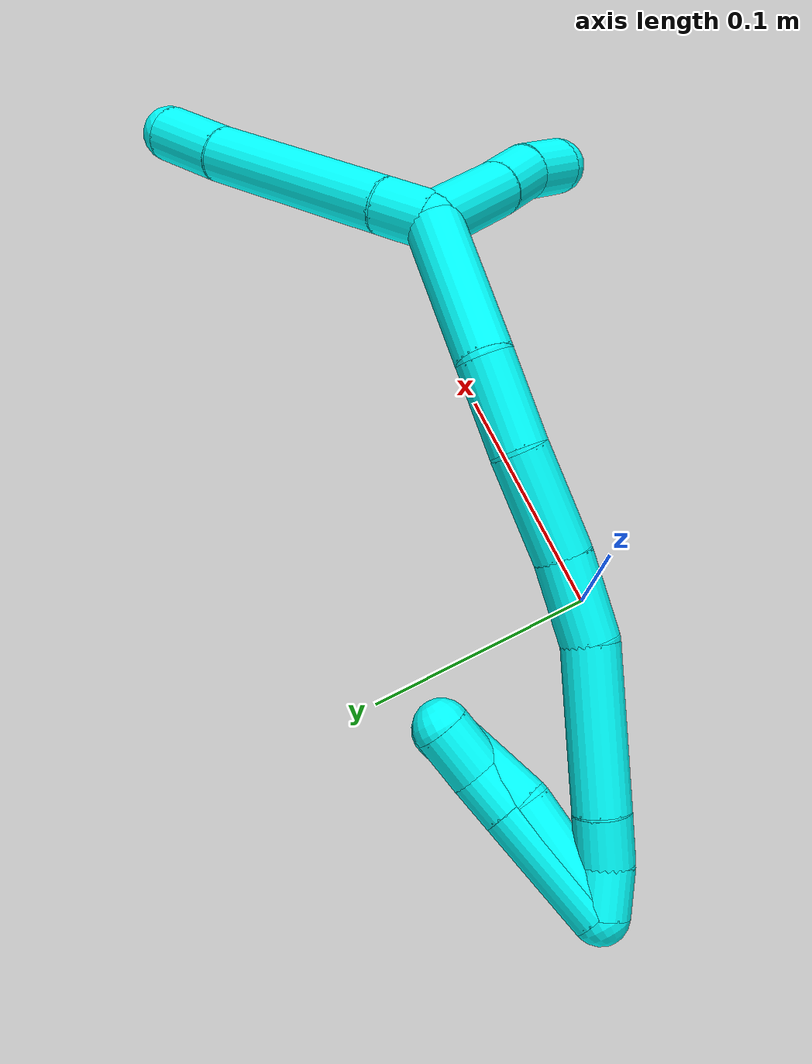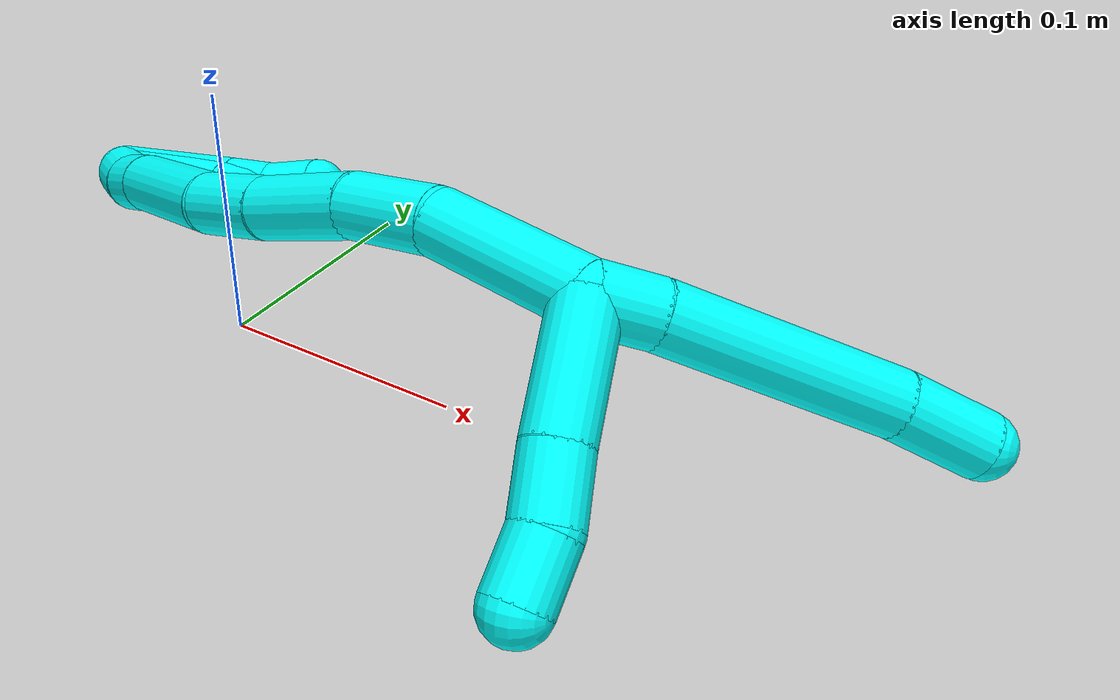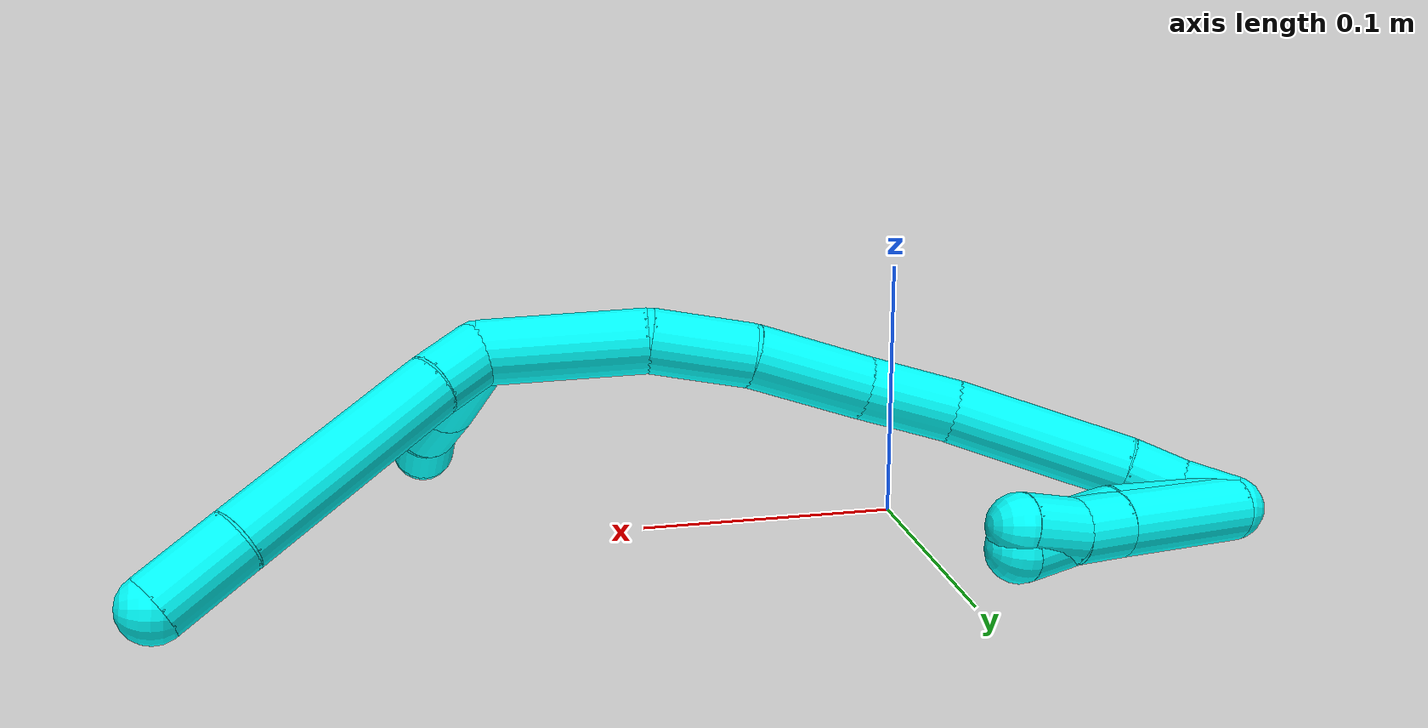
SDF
<sdf version="1.7">
 <world name="default">
  <model name="3">
   <static>0</static>
   <link name="3">
    <collision name="collision-cylinder-e_1_2_8">
     <pose>-0.006039 0.00526 0.009079 -0.525087 -0.522267 0.143391</pose>
     <geometry><cylinder><radius>0.0125</radius><length>0.024212</length></cylinder></geometry>
     <surface>
      <friction><ode><mu>1.16</mu><mu2>1.16</mu2><slip1>0</slip1><slip2>0</slip2></ode></friction>
      <contact><ode><kp>1e+06</kp><kd>1</kd><max_vel>0</max_vel><min_depth>0.001</min_depth></ode></contact>
     </surface>
    </collision>
    <visual name="visual-cylinder-e_1_2_8">
     <pose>-0.006039 0.00526 0.009079 -0.525087 -0.522267 0.143391</pose>
     <geometry><cylinder><radius>0.0125</radius><length>0.024212</length></cylinder></geometry>
     <material><ambient>0.003922 1 0.996078 1</ambient></material>
    </visual>
    <collision name="collision-cylinder-e_2_8_9">
     <pose>-0.032366 0.033656 0.051547 -0.605956 -0.463181 0.14717</pose>
     <geometry><cylinder><radius>0.0125</radius><length>0.090813</length></cylinder></geometry>
     <surface>
      <friction><ode><mu>1.16</mu><mu2>1.16</mu2><slip1>0</slip1><slip2>0</slip2></ode></friction>
      <contact><ode><kp>1e+06</kp><kd>1</kd><max_vel>0</max_vel><min_depth>0.001</min_depth></ode></contact>
     </surface>
    </collision>
    <visual name="visual-cylinder-e_2_8_9">
     <pose>-0.032366 0.033656 0.051547 -0.605956 -0.463181 0.14717</pose>
     <geometry><cylinder><radius>0.0125</radius><length>0.090813</length></cylinder></geometry>
     <material><ambient>0.003922 1 0.996078 1</ambient></material>
    </visual>
    <collision name="collision-cylinder-e_3_9_6">
     <pose>-0.058968 0.066537 0.098013 -0.64046 -0.369433 0.123775</pose>
     <geometry><cylinder><radius>0.0125</radius><length>0.034975</length></cylinder></geometry>
     <surface>
      <friction><ode><mu>1.16</mu><mu2>1.16</mu2><slip1>0</slip1><slip2>0</slip2></ode></friction>
      <contact><ode><kp>1e+06</kp><kd>1</kd><max_vel>0</max_vel><min_depth>0.001</min_depth></ode></contact>
     </surface>
    </collision>
    <visual name="visual-cylinder-e_3_9_6">
     <pose>-0.058968 0.066537 0.098013 -0.64046 -0.369433 0.123775</pose>
     <geometry><cylinder><radius>0.0125</radius><length>0.034975</length></cylinder></geometry>
     <material><ambient>0.003922 1 0.996078 1</ambient></material>
    </visual>
    <collision name="collision-cylinder-e_1_2_10">
     <pose>0.019605 0.014816 0.003056 -1.36737 0.913595 -0.761764</pose>
     <geometry><cylinder><radius>0.0125</radius><length>0.049526</length></cylinder></geometry>
     <surface>
      <friction><ode><mu>1.16</mu><mu2>1.16</mu2><slip1>0</slip1><slip2>0</slip2></ode></friction>
      <contact><ode><kp>1e+06</kp><kd>1</kd><max_vel>0</max_vel><min_depth>0.001</min_depth></ode></contact>
     </surface>
    </collision>
    <visual name="visual-cylinder-e_1_2_10">
     <pose>0.019605 0.014816 0.003056 -1.36737 0.913595 -0.761764</pose>
     <geometry><cylinder><radius>0.0125</radius><length>0.049526</length></cylinder></geometry>
     <material><ambient>0.003922 1 0.996078 1</ambient></material>
    </visual>
    <collision name="collision-cylinder-e_2_10_11">
     <pose>0.049321 0.037605 0.008503 -1.27952 0.882068 -0.675633</pose>
     <geometry><cylinder><radius>0.0125</radius><length>0.026193</length></cylinder></geometry>
     <surface>
      <friction><ode><mu>1.16</mu><mu2>1.16</mu2><slip1>0</slip1><slip2>0</slip2></ode></friction>
      <contact><ode><kp>1e+06</kp><kd>1</kd><max_vel>0</max_vel><min_depth>0.001</min_depth></ode></contact>
     </surface>
    </collision>
    <visual name="visual-cylinder-e_2_10_11">
     <pose>0.049321 0.037605 0.008503 -1.27952 0.882068 -0.675633</pose>
     <geometry><cylinder><radius>0.0125</radius><length>0.026193</length></cylinder></geometry>
     <material><ambient>0.003922 1 0.996078 1</ambient></material>
    </visual>
    <collision name="collision-cylinder-e_3_11_5">
     <pose>0.069193 0.05276 0.010147 -1.67426 0.933861 -1.01971</pose>
     <geometry><cylinder><radius>0.0125</radius><length>0.024281</length></cylinder></geometry>
     <surface>
      <friction><ode><mu>1.16</mu><mu2>1.16</mu2><slip1>0</slip1><slip2>0</slip2></ode></friction>
      <contact><ode><kp>1e+06</kp><kd>1</kd><max_vel>0</max_vel><min_depth>0.001</min_depth></ode></contact>
     </surface>
    </collision>
    <visual name="visual-cylinder-e_3_11_5">
     <pose>0.069193 0.05276 0.010147 -1.67426 0.933861 -1.01971</pose>
     <geometry><cylinder><radius>0.0125</radius><length>0.024281</length></cylinder></geometry>
     <material><ambient>0.003922 1 0.996078 1</ambient></material>
    </visual>
    <collision name="collision-cylinder-e_1_2_12">
     <pose>-0.006477 -0.005039 -0.03088 2.97984 -0.204136 -1.8027</pose>
     <geometry><cylinder><radius>0.0125</radius><length>0.063903</length></cylinder></geometry>
     <surface>
      <friction><ode><mu>1.16</mu><mu2>1.16</mu2><slip1>0</slip1><slip2>0</slip2></ode></friction>
      <contact><ode><kp>1e+06</kp><kd>1</kd><max_vel>0</max_vel><min_depth>0.001</min_depth></ode></contact>
     </surface>
    </collision>
    <visual name="visual-cylinder-e_1_2_12">
     <pose>-0.006477 -0.005039 -0.03088 2.97984 -0.204136 -1.8027</pose>
     <geometry><cylinder><radius>0.0125</radius><length>0.063903</length></cylinder></geometry>
     <material><ambient>0.003922 1 0.996078 1</ambient></material>
    </visual>
    <collision name="collision-cylinder-e_2_12_13">
     <pose>-0.016142 -0.008617 -0.081348 -3.06716 -0.160874 2.27618</pose>
     <geometry><cylinder><radius>0.0125</radius><length>0.039801</length></cylinder></geometry>
     <surface>
      <friction><ode><mu>1.16</mu><mu2>1.16</mu2><slip1>0</slip1><slip2>0</slip2></ode></friction>
      <contact><ode><kp>1e+06</kp><kd>1</kd><max_vel>0</max_vel><min_depth>0.001</min_depth></ode></contact>
     </surface>
    </collision>
    <visual name="visual-cylinder-e_2_12_13">
     <pose>-0.016142 -0.008617 -0.081348 -3.06716 -0.160874 2.27618</pose>
     <geometry><cylinder><radius>0.0125</radius><length>0.039801</length></cylinder></geometry>
     <material><ambient>0.003922 1 0.996078 1</ambient></material>
    </visual>
    <collision name="collision-cylinder-e_3_13_14">
     <pose>-0.0214 -0.002152 -0.123617 -2.92441 -0.088893 0.774713</pose>
     <geometry><cylinder><radius>0.0125</radius><length>0.046635</length></cylinder></geometry>
     <surface>
      <friction><ode><mu>1.16</mu><mu2>1.16</mu2><slip1>0</slip1><slip2>0</slip2></ode></friction>
      <contact><ode><kp>1e+06</kp><kd>1</kd><max_vel>0</max_vel><min_depth>0.001</min_depth></ode></contact>
     </surface>
    </collision>
    <visual name="visual-cylinder-e_3_13_14">
     <pose>-0.0214 -0.002152 -0.123617 -2.92441 -0.088893 0.774713</pose>
     <geometry><cylinder><radius>0.0125</radius><length>0.046635</length></cylinder></geometry>
     <material><ambient>0.003922 1 0.996078 1</ambient></material>
    </visual>
    <collision name="collision-cylinder-e_4_14_15">
     <pose>-0.026877 0.006133 -0.163982 -2.9582 -0.187188 1.59142</pose>
     <geometry><cylinder><radius>0.0125</radius><length>0.036613</length></cylinder></geometry>
     <surface>
      <friction><ode><mu>1.16</mu><mu2>1.16</mu2><slip1>0</slip1><slip2>0</slip2></ode></friction>
      <contact><ode><kp>1e+06</kp><kd>1</kd><max_vel>0</max_vel><min_depth>0.001</min_depth></ode></contact>
     </surface>
    </collision>
    <visual name="visual-cylinder-e_4_14_15">
     <pose>-0.026877 0.006133 -0.163982 -2.9582 -0.187188 1.59142</pose>
     <geometry><cylinder><radius>0.0125</radius><length>0.036613</length></cylinder></geometry>
     <material><ambient>0.003922 1 0.996078 1</ambient></material>
    </visual>
    <collision name="collision-cylinder-e_5_15_16">
     <pose>-0.044618 0.01631 -0.212882 -2.92412 -0.42152 2.19792</pose>
     <geometry><cylinder><radius>0.0125</radius><length>0.070068</length></cylinder></geometry>
     <surface>
      <friction><ode><mu>1.16</mu><mu2>1.16</mu2><slip1>0</slip1><slip2>0</slip2></ode></friction>
      <contact><ode><kp>1e+06</kp><kd>1</kd><max_vel>0</max_vel><min_depth>0.001</min_depth></ode></contact>
     </surface>
    </collision>
    <visual name="visual-cylinder-e_5_15_16">
     <pose>-0.044618 0.01631 -0.212882 -2.92412 -0.42152 2.19792</pose>
     <geometry><cylinder><radius>0.0125</radius><length>0.070068</length></cylinder></geometry>
     <material><ambient>0.003922 1 0.996078 1</ambient></material>
    </visual>
    <collision name="collision-cylinder-e_6_16_17">
     <pose>-0.063164 0.026242 -0.253632 -2.83348 -0.398444 1.83032</pose>
     <geometry><cylinder><radius>0.0125</radius><length>0.021713</length></cylinder></geometry>
     <surface>
      <friction><ode><mu>1.16</mu><mu2>1.16</mu2><slip1>0</slip1><slip2>0</slip2></ode></friction>
      <contact><ode><kp>1e+06</kp><kd>1</kd><max_vel>0</max_vel><min_depth>0.001</min_depth></ode></contact>
     </surface>
    </collision>
    <visual name="visual-cylinder-e_6_16_17">
     <pose>-0.063164 0.026242 -0.253632 -2.83348 -0.398444 1.83032</pose>
     <geometry><cylinder><radius>0.0125</radius><length>0.021713</length></cylinder></geometry>
     <material><ambient>0.003922 1 0.996078 1</ambient></material>
    </visual>
    <collision name="collision-cylinder-e_7_17_1">
     <pose>-0.073435 0.03088 -0.271757 -2.95714 -0.606271 2.56657</pose>
     <geometry><cylinder><radius>0.0125</radius><length>0.021266</length></cylinder></geometry>
     <surface>
      <friction><ode><mu>1.16</mu><mu2>1.16</mu2><slip1>0</slip1><slip2>0</slip2></ode></friction>
      <contact><ode><kp>1e+06</kp><kd>1</kd><max_vel>0</max_vel><min_depth>0.001</min_depth></ode></contact>
     </surface>
    </collision>
    <visual name="visual-cylinder-e_7_17_1">
     <pose>-0.073435 0.03088 -0.271757 -2.95714 -0.606271 2.56657</pose>
     <geometry><cylinder><radius>0.0125</radius><length>0.021266</length></cylinder></geometry>
     <material><ambient>0.003922 1 0.996078 1</ambient></material>
    </visual>
    <collision name="collision-cylinder-e_1_1_18">
     <pose>-0.084572 0.034444 -0.253053 -0.071769 -0.183473 0.006605</pose>
     <geometry><cylinder><radius>0.0125</radius><length>0.055662</length></cylinder></geometry>
     <surface>
      <friction><ode><mu>1.16</mu><mu2>1.16</mu2><slip1>0</slip1><slip2>0</slip2></ode></friction>
      <contact><ode><kp>1e+06</kp><kd>1</kd><max_vel>0</max_vel><min_depth>0.001</min_depth></ode></contact>
     </surface>
    </collision>
    <visual name="visual-cylinder-e_1_1_18">
     <pose>-0.084572 0.034444 -0.253053 -0.071769 -0.183473 0.006605</pose>
     <geometry><cylinder><radius>0.0125</radius><length>0.055662</length></cylinder></geometry>
     <material><ambient>0.003922 1 0.996078 1</ambient></material>
    </visual>
    <collision name="collision-cylinder-e_2_18_19">
     <pose>-0.091449 0.037272 -0.215879 -0.087333 -0.179489 0.007864</pose>
     <geometry><cylinder><radius>0.0125</radius><length>0.020159</length></cylinder></geometry>
     <surface>
      <friction><ode><mu>1.16</mu><mu2>1.16</mu2><slip1>0</slip1><slip2>0</slip2></ode></friction>
      <contact><ode><kp>1e+06</kp><kd>1</kd><max_vel>0</max_vel><min_depth>0.001</min_depth></ode></contact>
     </surface>
    </collision>
    <visual name="visual-cylinder-e_2_18_19">
     <pose>-0.091449 0.037272 -0.215879 -0.087333 -0.179489 0.007864</pose>
     <geometry><cylinder><radius>0.0125</radius><length>0.020159</length></cylinder></geometry>
     <material><ambient>0.003922 1 0.996078 1</ambient></material>
    </visual>
    <collision name="collision-cylinder-e_3_19_4">
     <pose>-0.095301 0.036651 -0.194179 0.125039 -0.170663 -0.01071</pose>
     <geometry><cylinder><radius>0.0125</radius><length>0.024178</length></cylinder></geometry>
     <surface>
      <friction><ode><mu>1.16</mu><mu2>1.16</mu2><slip1>0</slip1><slip2>0</slip2></ode></friction>
      <contact><ode><kp>1e+06</kp><kd>1</kd><max_vel>0</max_vel><min_depth>0.001</min_depth></ode></contact>
     </surface>
    </collision>
    <visual name="visual-cylinder-e_3_19_4">
     <pose>-0.095301 0.036651 -0.194179 0.125039 -0.170663 -0.01071</pose>
     <geometry><cylinder><radius>0.0125</radius><length>0.024178</length></cylinder></geometry>
     <material><ambient>0.003922 1 0.996078 1</ambient></material>
    </visual>
    <collision name="collision-cylinder-e_1_1_20">
     <pose>-0.081707 0.034174 -0.253425 -0.062744 -0.081852 0.00257</pose>
     <geometry><cylinder><radius>0.0125</radius><length>0.05413</length></cylinder></geometry>
     <surface>
      <friction><ode><mu>1.16</mu><mu2>1.16</mu2><slip1>0</slip1><slip2>0</slip2></ode></friction>
      <contact><ode><kp>1e+06</kp><kd>1</kd><max_vel>0</max_vel><min_depth>0.001</min_depth></ode></contact>
     </surface>
    </collision>
    <visual name="visual-cylinder-e_1_1_20">
     <pose>-0.081707 0.034174 -0.253425 -0.062744 -0.081852 0.00257</pose>
     <geometry><cylinder><radius>0.0125</radius><length>0.05413</length></cylinder></geometry>
     <material><ambient>0.003922 1 0.996078 1</ambient></material>
    </visual>
    <collision name="collision-cylinder-e_2_20_3">
     <pose>-0.090621 0.039788 -0.204923 -0.179826 -0.296527 0.02693</pose>
     <geometry><cylinder><radius>0.0125</radius><length>0.04587</length></cylinder></geometry>
     <surface>
      <friction><ode><mu>1.16</mu><mu2>1.16</mu2><slip1>0</slip1><slip2>0</slip2></ode></friction>
      <contact><ode><kp>1e+06</kp><kd>1</kd><max_vel>0</max_vel><min_depth>0.001</min_depth></ode></contact>
     </surface>
    </collision>
    <visual name="visual-cylinder-e_2_20_3">
     <pose>-0.090621 0.039788 -0.204923 -0.179826 -0.296527 0.02693</pose>
     <geometry><cylinder><radius>0.0125</radius><length>0.04587</length></cylinder></geometry>
     <material><ambient>0.003922 1 0.996078 1</ambient></material>
    </visual>
    <collision name="collision-sphere-3">
     <pose>-0.097323 0.043711 -0.183343 0 -0 0</pose>
     <geometry><sphere><radius>0.0125</radius></sphere></geometry>
     <surface>
      <friction><ode><mu>1.16</mu><mu2>1.16</mu2><slip1>0</slip1><slip2>0</slip2></ode></friction>
      <contact><ode><kp>1e+06</kp><kd>1</kd><max_vel>0</max_vel><min_depth>0.001</min_depth></ode></contact>
     </surface>
    </collision>
    <visual name="visual-sphere-3">
     <pose>-0.097323 0.043711 -0.183343 0 -0 0</pose>
     <geometry><sphere><radius>0.0125</radius></sphere></geometry>
     <material><ambient>0.003922 1 0.996078 1</ambient></material>
    </visual>
    <collision name="collision-sphere-20">
     <pose>-0.08392 0.035865 -0.226503 0 -0 0</pose>
     <geometry><sphere><radius>0.0125</radius></sphere></geometry>
     <surface>
      <friction><ode><mu>1.16</mu><mu2>1.16</mu2><slip1>0</slip1><slip2>0</slip2></ode></friction>
      <contact><ode><kp>1e+06</kp><kd>1</kd><max_vel>0</max_vel><min_depth>0.001</min_depth></ode></contact>
     </surface>
    </collision>
    <visual name="visual-sphere-20">
     <pose>-0.08392 0.035865 -0.226503 0 -0 0</pose>
     <geometry><sphere><radius>0.0125</radius></sphere></geometry>
     <material><ambient>0.003922 1 0.996078 1</ambient></material>
    </visual>
    <collision name="collision-sphere-4">
     <pose>-0.097355 0.035165 -0.182358 0 -0 0</pose>
     <geometry><sphere><radius>0.0125</radius></sphere></geometry>
     <surface>
      <friction><ode><mu>1.16</mu><mu2>1.16</mu2><slip1>0</slip1><slip2>0</slip2></ode></friction>
      <contact><ode><kp>1e+06</kp><kd>1</kd><max_vel>0</max_vel><min_depth>0.001</min_depth></ode></contact>
     </surface>
    </collision>
    <visual name="visual-sphere-4">
     <pose>-0.097355 0.035165 -0.182358 0 -0 0</pose>
     <geometry><sphere><radius>0.0125</radius></sphere></geometry>
     <material><ambient>0.003922 1 0.996078 1</ambient></material>
    </visual>
    <collision name="collision-sphere-11">
     <pose>0.059433 0.045578 0.010893 0 -0 0</pose>
     <geometry><sphere><radius>0.0125</radius></sphere></geometry>
     <surface>
      <friction><ode><mu>1.16</mu><mu2>1.16</mu2><slip1>0</slip1><slip2>0</slip2></ode></friction>
      <contact><ode><kp>1e+06</kp><kd>1</kd><max_vel>0</max_vel><min_depth>0.001</min_depth></ode></contact>
     </surface>
    </collision>
    <visual name="visual-sphere-11">
     <pose>0.059433 0.045578 0.010893 0 -0 0</pose>
     <geometry><sphere><radius>0.0125</radius></sphere></geometry>
     <material><ambient>0.003922 1 0.996078 1</ambient></material>
    </visual>
    <collision name="collision-sphere-10">
     <pose>0.03921 0.029632 0.006112 0 -0 0</pose>
     <geometry><sphere><radius>0.0125</radius></sphere></geometry>
     <surface>
      <friction><ode><mu>1.16</mu><mu2>1.16</mu2><slip1>0</slip1><slip2>0</slip2></ode></friction>
      <contact><ode><kp>1e+06</kp><kd>1</kd><max_vel>0</max_vel><min_depth>0.001</min_depth></ode></contact>
     </surface>
    </collision>
    <visual name="visual-sphere-10">
     <pose>0.03921 0.029632 0.006112 0 -0 0</pose>
     <geometry><sphere><radius>0.0125</radius></sphere></geometry>
     <material><ambient>0.003922 1 0.996078 1</ambient></material>
    </visual>
    <collision name="collision-sphere-6">
     <pose>-0.065282 0.076282 0.111089 0 -0 0</pose>
     <geometry><sphere><radius>0.0125</radius></sphere></geometry>
     <surface>
      <friction><ode><mu>1.16</mu><mu2>1.16</mu2><slip1>0</slip1><slip2>0</slip2></ode></friction>
      <contact><ode><kp>1e+06</kp><kd>1</kd><max_vel>0</max_vel><min_depth>0.001</min_depth></ode></contact>
     </surface>
    </collision>
    <visual name="visual-sphere-6">
     <pose>-0.065282 0.076282 0.111089 0 -0 0</pose>
     <geometry><sphere><radius>0.0125</radius></sphere></geometry>
     <material><ambient>0.003922 1 0.996078 1</ambient></material>
    </visual>
    <collision name="collision-sphere-9">
     <pose>-0.052653 0.056792 0.084937 0 -0 0</pose>
     <geometry><sphere><radius>0.0125</radius></sphere></geometry>
     <surface>
      <friction><ode><mu>1.16</mu><mu2>1.16</mu2><slip1>0</slip1><slip2>0</slip2></ode></friction>
      <contact><ode><kp>1e+06</kp><kd>1</kd><max_vel>0</max_vel><min_depth>0.001</min_depth></ode></contact>
     </surface>
    </collision>
    <visual name="visual-sphere-9">
     <pose>-0.052653 0.056792 0.084937 0 -0 0</pose>
     <geometry><sphere><radius>0.0125</radius></sphere></geometry>
     <material><ambient>0.003922 1 0.996078 1</ambient></material>
    </visual>
    <collision name="collision-sphere-2">
     <geometry><sphere><radius>0.0125</radius></sphere></geometry>
     <surface>
      <friction><ode><mu>1.16</mu><mu2>1.16</mu2><slip1>0</slip1><slip2>0</slip2></ode></friction>
      <contact><ode><kp>1e+06</kp><kd>1</kd><max_vel>0</max_vel><min_depth>0.001</min_depth></ode></contact>
     </surface>
    </collision>
    <visual name="visual-sphere-2">
     <geometry><sphere><radius>0.0125</radius></sphere></geometry>
     <material><ambient>0.003922 1 0.996078 1</ambient></material>
    </visual>
    <collision name="collision-sphere-19">
     <pose>-0.093248 0.038137 -0.205999 0 -0 0</pose>
     <geometry><sphere><radius>0.0125</radius></sphere></geometry>
     <surface>
      <friction><ode><mu>1.16</mu><mu2>1.16</mu2><slip1>0</slip1><slip2>0</slip2></ode></friction>
      <contact><ode><kp>1e+06</kp><kd>1</kd><max_vel>0</max_vel><min_depth>0.001</min_depth></ode></contact>
     </surface>
    </collision>
    <visual name="visual-sphere-19">
     <pose>-0.093248 0.038137 -0.205999 0 -0 0</pose>
     <geometry><sphere><radius>0.0125</radius></sphere></geometry>
     <material><ambient>0.003922 1 0.996078 1</ambient></material>
    </visual>
    <collision name="collision-sphere-8">
     <pose>-0.012078 0.010519 0.018158 0 -0 0</pose>
     <geometry><sphere><radius>0.0125</radius></sphere></geometry>
     <surface>
      <friction><ode><mu>1.16</mu><mu2>1.16</mu2><slip1>0</slip1><slip2>0</slip2></ode></friction>
      <contact><ode><kp>1e+06</kp><kd>1</kd><max_vel>0</max_vel><min_depth>0.001</min_depth></ode></contact>
     </surface>
    </collision>
    <visual name="visual-sphere-8">
     <pose>-0.012078 0.010519 0.018158 0 -0 0</pose>
     <geometry><sphere><radius>0.0125</radius></sphere></geometry>
     <material><ambient>0.003922 1 0.996078 1</ambient></material>
    </visual>
    <collision name="collision-sphere-5">
     <pose>0.078952 0.059941 0.009402 0 -0 0</pose>
     <geometry><sphere><radius>0.0125</radius></sphere></geometry>
     <surface>
      <friction><ode><mu>1.16</mu><mu2>1.16</mu2><slip1>0</slip1><slip2>0</slip2></ode></friction>
      <contact><ode><kp>1e+06</kp><kd>1</kd><max_vel>0</max_vel><min_depth>0.001</min_depth></ode></contact>
     </surface>
    </collision>
    <visual name="visual-sphere-5">
     <pose>0.078952 0.059941 0.009402 0 -0 0</pose>
     <geometry><sphere><radius>0.0125</radius></sphere></geometry>
     <material><ambient>0.003922 1 0.996078 1</ambient></material>
    </visual>
    <collision name="collision-sphere-12">
     <pose>-0.012954 -0.010078 -0.061759 0 -0 0</pose>
     <geometry><sphere><radius>0.0125</radius></sphere></geometry>
     <surface>
      <friction><ode><mu>1.16</mu><mu2>1.16</mu2><slip1>0</slip1><slip2>0</slip2></ode></friction>
      <contact><ode><kp>1e+06</kp><kd>1</kd><max_vel>0</max_vel><min_depth>0.001</min_depth></ode></contact>
     </surface>
    </collision>
    <visual name="visual-sphere-12">
     <pose>-0.012954 -0.010078 -0.061759 0 -0 0</pose>
     <geometry><sphere><radius>0.0125</radius></sphere></geometry>
     <material><ambient>0.003922 1 0.996078 1</ambient></material>
    </visual>
    <collision name="collision-sphere-13">
     <pose>-0.01933 -0.007156 -0.100938 0 -0 0</pose>
     <geometry><sphere><radius>0.0125</radius></sphere></geometry>
     <surface>
      <friction><ode><mu>1.16</mu><mu2>1.16</mu2><slip1>0</slip1><slip2>0</slip2></ode></friction>
      <contact><ode><kp>1e+06</kp><kd>1</kd><max_vel>0</max_vel><min_depth>0.001</min_depth></ode></contact>
     </surface>
    </collision>
    <visual name="visual-sphere-13">
     <pose>-0.01933 -0.007156 -0.100938 0 -0 0</pose>
     <geometry><sphere><radius>0.0125</radius></sphere></geometry>
     <material><ambient>0.003922 1 0.996078 1</ambient></material>
    </visual>
    <collision name="collision-sphere-14">
     <pose>-0.02347 0.002853 -0.146297 0 -0 0</pose>
     <geometry><sphere><radius>0.0125</radius></sphere></geometry>
     <surface>
      <friction><ode><mu>1.16</mu><mu2>1.16</mu2><slip1>0</slip1><slip2>0</slip2></ode></friction>
      <contact><ode><kp>1e+06</kp><kd>1</kd><max_vel>0</max_vel><min_depth>0.001</min_depth></ode></contact>
     </surface>
    </collision>
    <visual name="visual-sphere-14">
     <pose>-0.02347 0.002853 -0.146297 0 -0 0</pose>
     <geometry><sphere><radius>0.0125</radius></sphere></geometry>
     <material><ambient>0.003922 1 0.996078 1</ambient></material>
    </visual>
    <collision name="collision-sphere-15">
     <pose>-0.030284 0.009413 -0.181667 0 -0 0</pose>
     <geometry><sphere><radius>0.0125</radius></sphere></geometry>
     <surface>
      <friction><ode><mu>1.16</mu><mu2>1.16</mu2><slip1>0</slip1><slip2>0</slip2></ode></friction>
      <contact><ode><kp>1e+06</kp><kd>1</kd><max_vel>0</max_vel><min_depth>0.001</min_depth></ode></contact>
     </surface>
    </collision>
    <visual name="visual-sphere-15">
     <pose>-0.030284 0.009413 -0.181667 0 -0 0</pose>
     <geometry><sphere><radius>0.0125</radius></sphere></geometry>
     <material><ambient>0.003922 1 0.996078 1</ambient></material>
    </visual>
    <collision name="collision-sphere-16">
     <pose>-0.058952 0.023208 -0.244097 0 -0 0</pose>
     <geometry><sphere><radius>0.0125</radius></sphere></geometry>
     <surface>
      <friction><ode><mu>1.16</mu><mu2>1.16</mu2><slip1>0</slip1><slip2>0</slip2></ode></friction>
      <contact><ode><kp>1e+06</kp><kd>1</kd><max_vel>0</max_vel><min_depth>0.001</min_depth></ode></contact>
     </surface>
    </collision>
    <visual name="visual-sphere-16">
     <pose>-0.058952 0.023208 -0.244097 0 -0 0</pose>
     <geometry><sphere><radius>0.0125</radius></sphere></geometry>
     <material><ambient>0.003922 1 0.996078 1</ambient></material>
    </visual>
    <collision name="collision-sphere-17">
     <pose>-0.067376 0.029277 -0.263167 0 -0 0</pose>
     <geometry><sphere><radius>0.0125</radius></sphere></geometry>
     <surface>
      <friction><ode><mu>1.16</mu><mu2>1.16</mu2><slip1>0</slip1><slip2>0</slip2></ode></friction>
      <contact><ode><kp>1e+06</kp><kd>1</kd><max_vel>0</max_vel><min_depth>0.001</min_depth></ode></contact>
     </surface>
    </collision>
    <visual name="visual-sphere-17">
     <pose>-0.067376 0.029277 -0.263167 0 -0 0</pose>
     <geometry><sphere><radius>0.0125</radius></sphere></geometry>
     <material><ambient>0.003922 1 0.996078 1</ambient></material>
    </visual>
    <collision name="collision-sphere-1">
     <pose>-0.079494 0.032482 -0.280346 0 -0 0</pose>
     <geometry><sphere><radius>0.0125</radius></sphere></geometry>
     <surface>
      <friction><ode><mu>1.16</mu><mu2>1.16</mu2><slip1>0</slip1><slip2>0</slip2></ode></friction>
      <contact><ode><kp>1e+06</kp><kd>1</kd><max_vel>0</max_vel><min_depth>0.001</min_depth></ode></contact>
     </surface>
    </collision>
    <visual name="visual-sphere-1">
     <pose>-0.079494 0.032482 -0.280346 0 -0 0</pose>
     <geometry><sphere><radius>0.0125</radius></sphere></geometry>
     <material><ambient>0.003922 1 0.996078 1</ambient></material>
    </visual>
    <collision name="collision-sphere-18">
     <pose>-0.089649 0.036407 -0.225759 0 -0 0</pose>
     <geometry><sphere><radius>0.0125</radius></sphere></geometry>
     <surface>
      <friction><ode><mu>1.16</mu><mu2>1.16</mu2><slip1>0</slip1><slip2>0</slip2></ode></friction>
      <contact><ode><kp>1e+06</kp><kd>1</kd><max_vel>0</max_vel><min_depth>0.001</min_depth></ode></contact>
     </surface>
    </collision>
    <visual name="visual-sphere-18">
     <pose>-0.089649 0.036407 -0.225759 0 -0 0</pose>
     <geometry><sphere><radius>0.0125</radius></sphere></geometry>
     <material><ambient>0.003922 1 0.996078 1</ambient></material>
    </visual>
    <inertial>
     <pose>-0.036984 0.023425 -0.107311 0 -0 0</pose>
     <mass>0.75</mass>
     <inertia><ixx>0.00011</ixx><ixy>0</ixy><ixz>0</ixz><iyy>0.000182</iyy><iyz>0</iyz><izz>-6e-06</izz></inertia>
    </inertial>
   </link>
   <pose>0.160183 -0.007189 0.072754 -1.45783 0.035485 -1.50655</pose>
  </model>
 </world>
</sdf>
